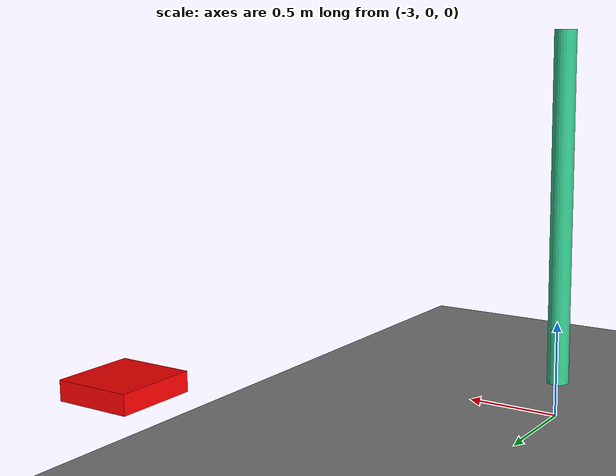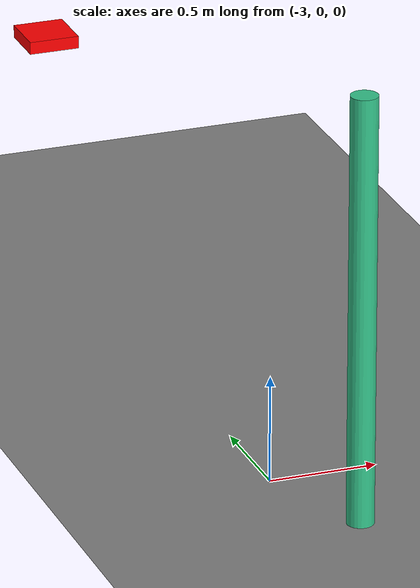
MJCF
<mujoco model="headless_uav_env">
  <compiler angle="degree" coordinate="local" inertiafromgeom="true"/>
  <option integrator="RK4" timestep="0.01"/>

  <worldbody>
    <!-- Ground plane -->
    <geom name="ground" type="plane" size="4.0 4.0 0.1"/>

    <!-- UAV starting position -->
    <body name="chassis" pos="-3.0 3.0 1.0">
      <joint type="free" name="root"/>
      <geom name="uav_body" type="box" size="0.12 0.12 0.03" rgba="1.0 0.0 0.0 1.0" mass="0.8"/>

      <!-- Sites for motor force application -->
      <site name="motor1" pos="0.06 0.06 0" size="0.01"/>
      <site name="motor2" pos="-0.06 0.06 0" size="0.01"/>
      <site name="motor3" pos="0.06 -0.06 0" size="0.01"/>
      <site name="motor4" pos="-0.06 -0.06 0" size="0.01"/>
    </body>
    <geom name="test_obs_0" type="cylinder" size="0.062467587058207895 1.0" pos="-2.7816483533296608 -0.5318427508372919 1.0" rgba="0.20141581591850422 0.7655304404453908 0.5437781561548933 1.0"/>
  </worldbody>

  <actuator>
    <motor name="m1" gear="0 0 1 0 0 0" site="motor1"/>
    <motor name="m2" gear="0 0 1 0 0 0" site="motor2"/>
    <motor name="m3" gear="0 0 1 0 0 0" site="motor3"/>
    <motor name="m4" gear="0 0 1 0 0 0" site="motor4"/>
  </actuator>
</mujoco>
